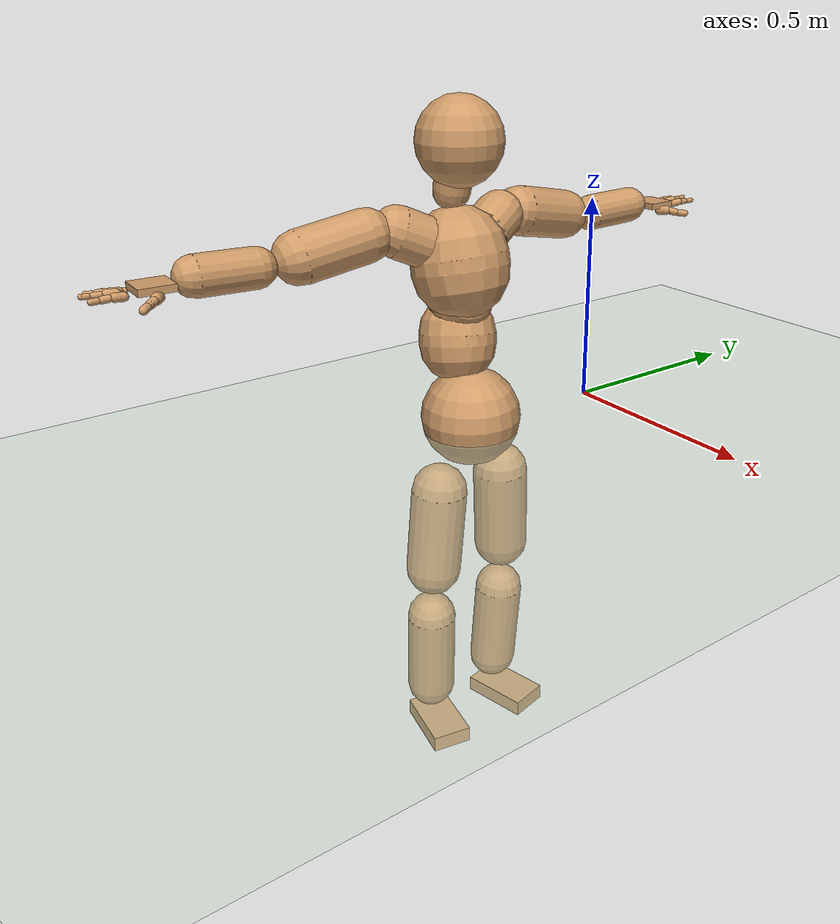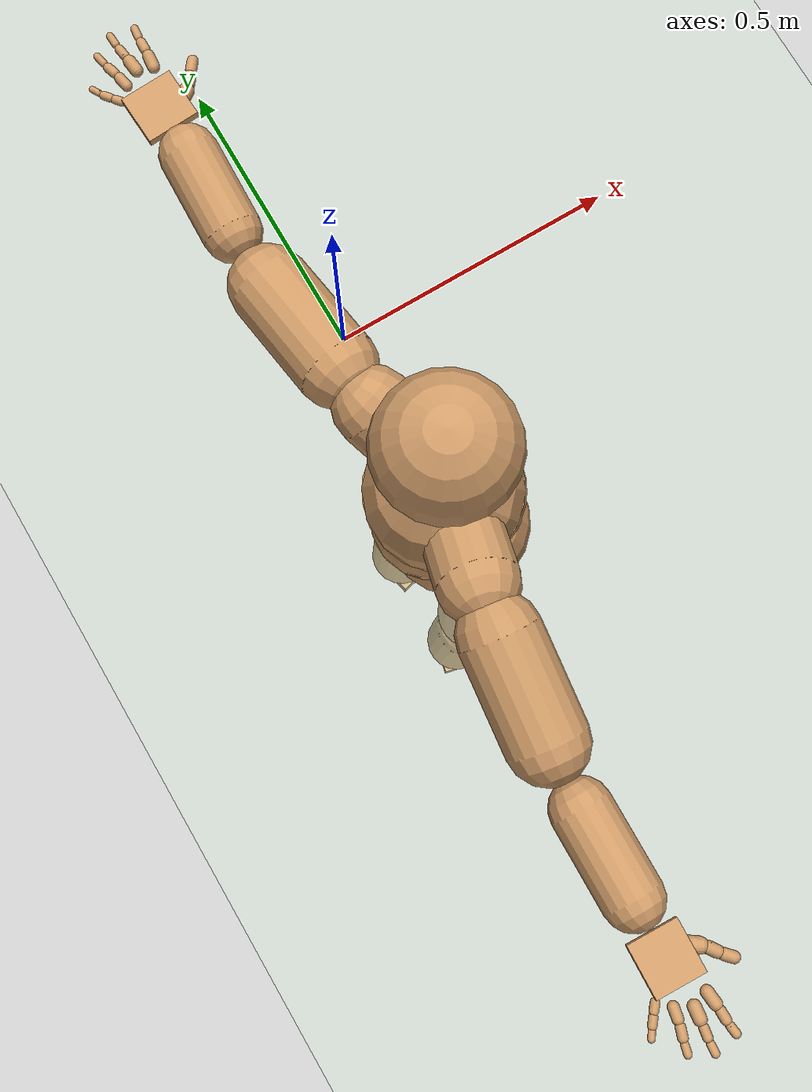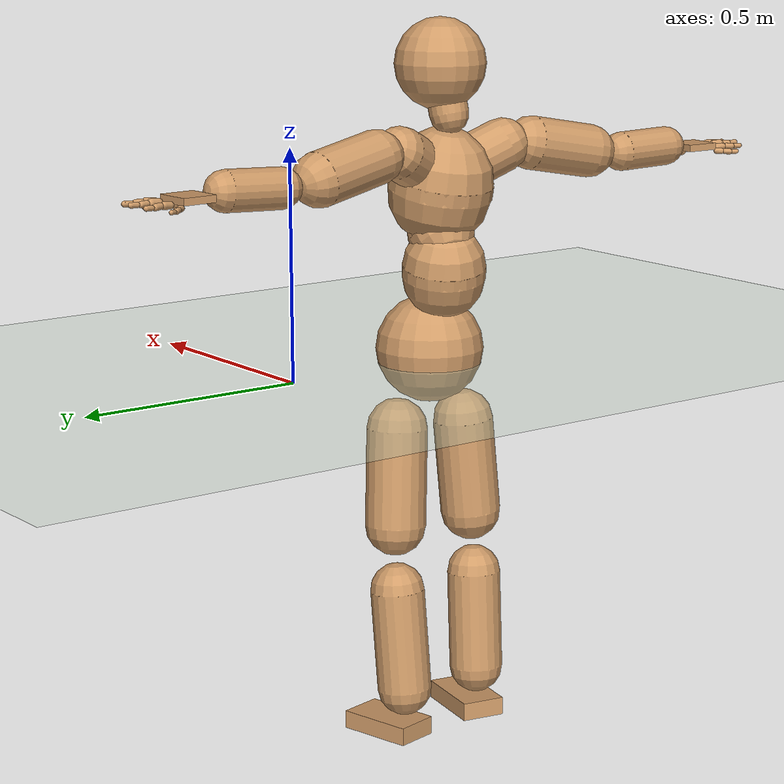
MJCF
<mujoco model="humanoid">
  <compiler coordinate="local" angle="radian"/>
  <default>
    <joint damping="0.0" armature="0.01" stiffness="0.0" limited="true"/>
    <geom conaffinity="1" condim="3" contype="7" margin="0.001" rgba="0.8 0.6 .4 1"/>
  </default>
  <asset>
    <texture type="skybox" builtin="gradient" rgb1=".4 .5 .6" rgb2="0 0 0" width="100" height="100"/>
    <texture builtin="flat" height="1278" mark="cross" markrgb="1 1 1" name="texgeom" random="0.01" rgb1="0.8 0.6 0.4" rgb2="0.8 0.6 0.4" type="cube" width="127"/>
    <texture builtin="checker" height="100" name="texplane" rgb1="0 0 0" rgb2="0.8 0.8 0.8" type="2d" width="100"/>
    <material name="MatPlane" reflectance="0.5" shininess="1" specular="1" texrepeat="60 60" texture="texplane"/>
    <material name="geom" texture="texgeom" texuniform="true"/>
  </asset>
  <worldbody>
    <light cutoff="100" diffuse="1 1 1" dir="-0 0 -1.3" directional="true" exponent="1" pos="0 0 1.3" specular=".1 .1 .1"/>
    <geom conaffinity="1" condim="3" name="floor" pos="0 0 0" rgba="0.8 0.9 0.8 1" size="100 100 .2" type="plane" material="MatPlane"/>
    <body name="Pelvis" pos="0.0007 -0.3651 0.0299">
      <freejoint name="Pelvis"/>
      <geom type="sphere" contype="1" conaffinity="1" density="500" size="0.1195" pos="0.0000 0.0000 0.0000" name="Pelvis"/>
      <body name="L_Hip" pos="0.0005 0.088 -0.098">
        <joint name="L_Hip_x" type="hinge" pos="0 0 0" axis="1 0 0" stiffness="800" damping="80" armature="0.02" range="-180.0000 180.0000"/>
        <joint name="L_Hip_y" type="hinge" pos="0 0 0" axis="0 1 0" stiffness="800" damping="80" armature="0.02" range="-180.0000 180.0000"/>
        <joint name="L_Hip_z" type="hinge" pos="0 0 0" axis="0 0 1" stiffness="800" damping="80" armature="0.02" range="-180.0000 180.0000"/>
        <geom type="capsule" contype="1" conaffinity="1" density="500" fromto="-0.0040 0.0046 -0.0721 -0.0159 0.0183 -0.2882" size="0.0678" name="L_Hip"/>
        <body name="L_Knee" pos="-0.0199 0.0229 -0.3603">
          <joint name="L_Knee_x" type="hinge" pos="0 0 0" axis="1 0 0" stiffness="800" damping="80" armature="0.02" range="-180.0000 180.0000"/>
          <joint name="L_Knee_y" type="hinge" pos="0 0 0" axis="0 1 0" stiffness="800" damping="80" armature="0.02" range="-180.0000 180.0000"/>
          <joint name="L_Knee_z" type="hinge" pos="0 0 0" axis="0 0 1" stiffness="800" damping="80" armature="0.02" range="-180.0000 180.0000"/>
          <geom type="capsule" contype="1" conaffinity="1" density="500" fromto="-0.0056 -0.0023 -0.0758 -0.0224 -0.0092 -0.3030" size="0.0608" name="L_Knee"/>
          <body name="L_Ankle" pos="-0.028 -0.0116 -0.3788">
            <joint name="L_Ankle_x" type="hinge" pos="0 0 0" axis="1 0 0" stiffness="800" damping="80" armature="0.02" range="-180.0000 180.0000"/>
            <joint name="L_Ankle_y" type="hinge" pos="0 0 0" axis="0 1 0" stiffness="800" damping="80" armature="0.02" range="-180.0000 180.0000"/>
            <joint name="L_Ankle_z" type="hinge" pos="0 0 0" axis="0 0 1" stiffness="800" damping="80" armature="0.02" range="-180.0000 180.0000"/>
            <geom type="box" contype="1" conaffinity="1" density="500" pos="0.0539 0.0119 -0.0202" size="0.0858 0.0496 0.0202" quat="0.9941 0.0000 0.0000 0.1088" name="L_Ankle"/>
            <body name="L_Toe" pos="0.1077 0.0239 -0.0404">
              <joint name="L_Toe_x" type="hinge" pos="0 0 0" axis="1 0 0" stiffness="500" damping="50" armature="0.02" range="-180.0000 180.0000"/>
              <joint name="L_Toe_y" type="hinge" pos="0 0 0" axis="0 1 0" stiffness="500" damping="50" armature="0.02" range="-180.0000 180.0000"/>
              <joint name="L_Toe_z" type="hinge" pos="0 0 0" axis="0 0 1" stiffness="500" damping="50" armature="0.02" range="-180.0000 180.0000"/>
              <geom type="box" contype="1" conaffinity="1" density="500" pos="0.0000 0.0000 0.0211" size="0.0009 0.0024 0.0011" quat="0.9933 0.0000 0.0000 0.1155" name="L_Toe"/>
            </body>
          </body>
        </body>
      </body>
      <body name="R_Hip" pos="-0.0005 -0.0869 -0.1038">
        <joint name="R_Hip_x" type="hinge" pos="0 0 0" axis="1 0 0" stiffness="800" damping="80" armature="0.02" range="-180.0000 180.0000"/>
        <joint name="R_Hip_y" type="hinge" pos="0 0 0" axis="0 1 0" stiffness="800" damping="80" armature="0.02" range="-180.0000 180.0000"/>
        <joint name="R_Hip_z" type="hinge" pos="0 0 0" axis="0 0 1" stiffness="800" damping="80" armature="0.02" range="-180.0000 180.0000"/>
        <geom type="capsule" contype="1" conaffinity="1" density="500" fromto="-0.0026 -0.0055 -0.0714 -0.0104 -0.0222 -0.2855" size="0.0676" name="R_Hip"/>
        <body name="R_Knee" pos="-0.013 -0.0277 -0.3569">
          <joint name="R_Knee_x" type="hinge" pos="0 0 0" axis="1 0 0" stiffness="800" damping="80" armature="0.02" range="-180.0000 180.0000"/>
          <joint name="R_Knee_y" type="hinge" pos="0 0 0" axis="0 1 0" stiffness="800" damping="80" armature="0.02" range="-180.0000 180.0000"/>
          <joint name="R_Knee_z" type="hinge" pos="0 0 0" axis="0 0 1" stiffness="800" damping="80" armature="0.02" range="-180.0000 180.0000"/>
          <geom type="capsule" contype="1" conaffinity="1" density="500" fromto="-0.0051 0.0013 -0.0740 -0.0202 0.0052 -0.2958" size="0.0607" name="R_Knee"/>
          <body name="R_Ankle" pos="-0.0253 0.0065 -0.3698">
            <joint name="R_Ankle_x" type="hinge" pos="0 0 0" axis="1 0 0" stiffness="800" damping="80" armature="0.02" range="-180.0000 180.0000"/>
            <joint name="R_Ankle_y" type="hinge" pos="0 0 0" axis="0 1 0" stiffness="800" damping="80" armature="0.02" range="-180.0000 180.0000"/>
            <joint name="R_Ankle_z" type="hinge" pos="0 0 0" axis="0 0 1" stiffness="800" damping="80" armature="0.02" range="-180.0000 180.0000"/>
            <geom type="box" contype="1" conaffinity="1" density="500" pos="0.0509 -0.0098 -0.0218" size="0.0858 0.0495 0.0203" quat="0.9955 0.0000 0.0000 -0.0951" name="R_Ankle"/>
            <body name="R_Toe" pos="0.1018 -0.0196 -0.0437">
              <joint name="R_Toe_x" type="hinge" pos="0 0 0" axis="1 0 0" stiffness="500" damping="50" armature="0.02" range="-180.0000 180.0000"/>
              <joint name="R_Toe_y" type="hinge" pos="0 0 0" axis="0 1 0" stiffness="500" damping="50" armature="0.02" range="-180.0000 180.0000"/>
              <joint name="R_Toe_z" type="hinge" pos="0 0 0" axis="0 0 1" stiffness="500" damping="50" armature="0.02" range="-180.0000 180.0000"/>
              <geom type="box" contype="1" conaffinity="1" density="500" pos="0.0000 0.0000 0.0227" size="0.0009 0.0024 0.0011" quat="0.9965 0.0000 0.0000 -0.0840" name="R_Toe"/>
            </body>
          </body>
        </body>
      </body>
      <body name="Torso" pos="-0.0389 -0.0068 0.1168">
        <joint name="Torso_x" type="hinge" pos="0 0 0" axis="1 0 0" stiffness="1000" damping="100" armature="0.02" range="-180.0000 180.0000"/>
        <joint name="Torso_y" type="hinge" pos="0 0 0" axis="0 1 0" stiffness="1000" damping="100" armature="0.02" range="-180.0000 180.0000"/>
        <joint name="Torso_z" type="hinge" pos="0 0 0" axis="0 0 1" stiffness="1000" damping="100" armature="0.02" range="-180.0000 180.0000"/>
        <geom type="capsule" contype="1" conaffinity="1" density="500" fromto="-0.0149 0.0083 0.0752 -0.0100 0.0055 0.0502" size="0.0916" name="Torso"/>
        <body name="Spine" pos="-0.0249 0.0138 0.1254">
          <joint name="Spine_x" type="hinge" pos="0 0 0" axis="1 0 0" stiffness="1000" damping="100" armature="0.02" range="-180.0000 180.0000"/>
          <joint name="Spine_y" type="hinge" pos="0 0 0" axis="0 1 0" stiffness="1000" damping="100" armature="0.02" range="-180.0000 180.0000"/>
          <joint name="Spine_z" type="hinge" pos="0 0 0" axis="0 0 1" stiffness="1000" damping="100" armature="0.02" range="-180.0000 180.0000"/>
          <geom type="capsule" contype="1" conaffinity="1" density="500" fromto="0.0255 -0.0044 0.0287 0.0170 -0.0030 0.0192" size="0.0728" name="Spine"/>
          <body name="Chest" pos="0.0426 -0.0074 0.0479">
            <joint name="Chest_x" type="hinge" pos="0 0 0" axis="1 0 0" stiffness="1000" damping="100" armature="0.02" range="-180.0000 180.0000"/>
            <joint name="Chest_y" type="hinge" pos="0 0 0" axis="0 1 0" stiffness="1000" damping="100" armature="0.02" range="-180.0000 180.0000"/>
            <joint name="Chest_z" type="hinge" pos="0 0 0" axis="0 0 1" stiffness="1000" damping="100" armature="0.02" range="-180.0000 180.0000"/>
            <geom type="capsule" contype="1" conaffinity="1" density="500" fromto="-0.0186 -0.0021 0.0885 -0.0124 -0.0014 0.0590" size="0.1144" name="Chest"/>
            <body name="Neck" pos="-0.0453 -0.0069 0.2034">
              <joint name="Neck_x" type="hinge" pos="0 0 0" axis="1 0 0" stiffness="500" damping="50" armature="0.02" range="-180.0000 180.0000"/>
              <joint name="Neck_y" type="hinge" pos="0 0 0" axis="0 1 0" stiffness="500" damping="50" armature="0.02" range="-180.0000 180.0000"/>
              <joint name="Neck_z" type="hinge" pos="0 0 0" axis="0 0 1" stiffness="500" damping="50" armature="0.02" range="-180.0000 180.0000"/>
              <geom type="capsule" contype="1" conaffinity="1" density="500" fromto="0.0054 0.0019 0.0268 0.0215 0.0076 0.1073" size="0.0429" name="Neck"/>
              <body name="Head" pos="0.0269 0.0094 0.1341">
                <joint name="Head_x" type="hinge" pos="0 0 0" axis="1 0 0" stiffness="500" damping="50" armature="0.02" range="-180.0000 180.0000"/>
                <joint name="Head_y" type="hinge" pos="0 0 0" axis="0 1 0" stiffness="500" damping="50" armature="0.02" range="-180.0000 180.0000"/>
                <joint name="Head_z" type="hinge" pos="0 0 0" axis="0 0 1" stiffness="500" damping="50" armature="0.02" range="-180.0000 180.0000"/>
                <geom type="sphere" contype="1" conaffinity="1" density="500" size="0.0995" pos="0.0000 0.0000 0.0000" name="Head"/>
              </body>
            </body>
            <body name="L_Thorax" pos="-0.0196 0.0579 0.1215">
              <joint name="L_Thorax_x" type="hinge" pos="0 0 0" axis="1 0 0" stiffness="500" damping="50" armature="0.02" range="-180.0000 180.0000"/>
              <joint name="L_Thorax_y" type="hinge" pos="0 0 0" axis="0 1 0" stiffness="500" damping="50" armature="0.02" range="-180.0000 180.0000"/>
              <joint name="L_Thorax_z" type="hinge" pos="0 0 0" axis="0 0 1" stiffness="500" damping="50" armature="0.02" range="-180.0000 180.0000"/>
              <geom type="capsule" contype="1" conaffinity="1" density="500" fromto="-0.0074 0.0190 0.0091 -0.0298 0.0762 0.0363" size="0.0579" name="L_Thorax"/>
              <body name="L_Shoulder" pos="-0.0372 0.0952 0.0453">
                <joint name="L_Shoulder_x" type="hinge" pos="0 0 0" axis="1 0 0" stiffness="500" damping="50" armature="0.02" range="-180.0000 180.0000"/>
                <joint name="L_Shoulder_y" type="hinge" pos="0 0 0" axis="0 1 0" stiffness="500" damping="50" armature="0.02" range="-180.0000 180.0000"/>
                <joint name="L_Shoulder_z" type="hinge" pos="0 0 0" axis="0 0 1" stiffness="500" damping="50" armature="0.02" range="-180.0000 180.0000"/>
                <geom type="capsule" contype="1" conaffinity="1" density="500" fromto="-0.0067 0.0529 -0.0103 -0.0267 0.2115 -0.0412" size="0.059" name="L_Shoulder"/>
                <body name="L_Elbow" pos="-0.0334 0.2644 -0.0515">
                  <joint name="L_Elbow_x" type="hinge" pos="0 0 0" axis="1 0 0" stiffness="500" damping="50" armature="0.02" range="-720.0000 720.0000"/>
                  <joint name="L_Elbow_y" type="hinge" pos="0 0 0" axis="0 1 0" stiffness="500" damping="50" armature="0.02" range="-720.0000 720.0000"/>
                  <joint name="L_Elbow_z" type="hinge" pos="0 0 0" axis="0 0 1" stiffness="500" damping="50" armature="0.02" range="-720.0000 720.0000"/>
                  <geom type="capsule" contype="1" conaffinity="1" density="500" fromto="0.0012 0.0438 0.0018 0.0049 0.1753 0.0071" size="0.0438" name="L_Elbow"/>
                  <body name="L_Wrist" pos="0.0061 0.2191 0.0089">
                    <joint name="L_Wrist_x" type="hinge" pos="0 0 0" axis="1 0 0" stiffness="300" damping="30" armature="0.02" range="-180.0000 180.0000"/>
                    <joint name="L_Wrist_y" type="hinge" pos="0 0 0" axis="0 1 0" stiffness="300" damping="30" armature="0.02" range="-180.0000 180.0000"/>
                    <joint name="L_Wrist_z" type="hinge" pos="0 0 0" axis="0 0 1" stiffness="300" damping="30" armature="0.02" range="-180.0000 180.0000"/>
                    <geom type="box" contype="1" conaffinity="1" density="500" pos="-0.0024 0.0414 -0.0080" size="0.0386 0.0402 0.0076" quat="0.7274 0.0000 0.0000 -0.6862" name="L_Wrist"/>
                    <body name="L_Index1" pos="0.0198 0.0977 -0.0134">
                      <joint name="L_Index1_x" type="hinge" pos="0 0 0" axis="1 0 0" stiffness="100" damping="10" armature="0.02" range="-180.0000 180.0000"/>
                      <joint name="L_Index1_y" type="hinge" pos="0 0 0" axis="0 1 0" stiffness="100" damping="10" armature="0.02" range="-180.0000 180.0000"/>
                      <joint name="L_Index1_z" type="hinge" pos="0 0 0" axis="0 0 1" stiffness="100" damping="10" armature="0.02" range="-180.0000 180.0000"/>
                      <geom type="capsule" contype="1" conaffinity="1" density="500" fromto="0.0006 0.0062 0.0006 0.0022 0.0247 0.0024" size="0.0091" name="L_Index1"/>
                      <body name="L_Index2" pos="0.0028 0.0309 0.003">
                        <joint name="L_Index2_x" type="hinge" pos="0 0 0" axis="1 0 0" stiffness="100" damping="10" armature="0.02" range="-180.0000 180.0000"/>
                        <joint name="L_Index2_y" type="hinge" pos="0 0 0" axis="0 1 0" stiffness="100" damping="10" armature="0.02" range="-180.0000 180.0000"/>
                        <joint name="L_Index2_z" type="hinge" pos="0 0 0" axis="0 0 1" stiffness="100" damping="10" armature="0.02" range="-180.0000 180.0000"/>
                        <geom type="capsule" contype="1" conaffinity="1" density="500" fromto="0.0001 0.0044 -0.0003 0.0003 0.0174 -0.0011" size="0.0074" name="L_Index2"/>
                        <body name="L_Index3" pos="0.0004 0.0218 -0.0014">
                          <joint name="L_Index3_x" type="hinge" pos="0 0 0" axis="1 0 0" stiffness="100" damping="10" armature="0.02" range="-180.0000 180.0000"/>
                          <joint name="L_Index3_y" type="hinge" pos="0 0 0" axis="0 1 0" stiffness="100" damping="10" armature="0.02" range="-180.0000 180.0000"/>
                          <joint name="L_Index3_z" type="hinge" pos="0 0 0" axis="0 0 1" stiffness="100" damping="10" armature="0.02" range="-180.0000 180.0000"/>
                          <geom type="capsule" contype="1" conaffinity="1" density="500" fromto="0.0005 0.0048 0.0001 0.0019 0.0190 0.0005" size="0.0061" name="L_Index3"/>
                        </body>
                      </body>
                    </body>
                    <body name="L_Middle1" pos="-0.0029 0.1045 -0.011">
                      <joint name="L_Middle1_x" type="hinge" pos="0 0 0" axis="1 0 0" stiffness="100" damping="10" armature="0.02" range="-180.0000 180.0000"/>
                      <joint name="L_Middle1_y" type="hinge" pos="0 0 0" axis="0 1 0" stiffness="100" damping="10" armature="0.02" range="-180.0000 180.0000"/>
                      <joint name="L_Middle1_z" type="hinge" pos="0 0 0" axis="0 0 1" stiffness="100" damping="10" armature="0.02" range="-180.0000 180.0000"/>
                      <geom type="capsule" contype="1" conaffinity="1" density="500" fromto="-0.0007 0.0059 0.0003 -0.0029 0.0234 0.0013" size="0.0094" name="L_Middle1"/>
                      <body name="L_Middle2" pos="-0.0036 0.0293 0.0016">
                        <joint name="L_Middle2_x" type="hinge" pos="0 0 0" axis="1 0 0" stiffness="100" damping="10" armature="0.02" range="-180.0000 180.0000"/>
                        <joint name="L_Middle2_y" type="hinge" pos="0 0 0" axis="0 1 0" stiffness="100" damping="10" armature="0.02" range="-180.0000 180.0000"/>
                        <joint name="L_Middle2_z" type="hinge" pos="0 0 0" axis="0 0 1" stiffness="100" damping="10" armature="0.02" range="-180.0000 180.0000"/>
                        <geom type="capsule" contype="1" conaffinity="1" density="500" fromto="-0.0007 0.0045 -0.0001 -0.0029 0.0180 -0.0005" size="0.0068" name="L_Middle2"/>
                        <body name="L_Middle3" pos="-0.0036 0.0225 -0.0006">
                          <joint name="L_Middle3_x" type="hinge" pos="0 0 0" axis="1 0 0" stiffness="100" damping="10" armature="0.02" range="-180.0000 180.0000"/>
                          <joint name="L_Middle3_y" type="hinge" pos="0 0 0" axis="0 1 0" stiffness="100" damping="10" armature="0.02" range="-180.0000 180.0000"/>
                          <joint name="L_Middle3_z" type="hinge" pos="0 0 0" axis="0 0 1" stiffness="100" damping="10" armature="0.02" range="-180.0000 180.0000"/>
                          <geom type="capsule" contype="1" conaffinity="1" density="500" fromto="-0.0003 0.0049 0.0003 -0.0013 0.0196 0.0011" size="0.0057" name="L_Middle3"/>
                        </body>
                      </body>
                    </body>
                    <body name="L_Pinky1" pos="-0.0414 0.0798 -0.0194">
                      <joint name="L_Pinky1_x" type="hinge" pos="0 0 0" axis="1 0 0" stiffness="100" damping="10" armature="0.02" range="-180.0000 180.0000"/>
                      <joint name="L_Pinky1_y" type="hinge" pos="0 0 0" axis="0 1 0" stiffness="100" damping="10" armature="0.02" range="-180.0000 180.0000"/>
                      <joint name="L_Pinky1_z" type="hinge" pos="0 0 0" axis="0 0 1" stiffness="100" damping="10" armature="0.02" range="-180.0000 180.0000"/>
                      <geom type="capsule" contype="1" conaffinity="1" density="500" fromto="-0.0023 0.0029 -0.0001 -0.0094 0.0115 -0.0005" size="0.0066" name="L_Pinky1"/>
                      <body name="L_Pinky2" pos="-0.0117 0.0143 -0.0006">
                        <joint name="L_Pinky2_x" type="hinge" pos="0 0 0" axis="1 0 0" stiffness="100" damping="10" armature="0.02" range="-180.0000 180.0000"/>
                        <joint name="L_Pinky2_y" type="hinge" pos="0 0 0" axis="0 1 0" stiffness="100" damping="10" armature="0.02" range="-180.0000 180.0000"/>
                        <joint name="L_Pinky2_z" type="hinge" pos="0 0 0" axis="0 0 1" stiffness="100" damping="10" armature="0.02" range="-180.0000 180.0000"/>
                        <geom type="capsule" contype="1" conaffinity="1" density="500" fromto="-0.0022 0.0029 -0.0002 -0.0090 0.0117 -0.0009" size="0.0064" name="L_Pinky2"/>
                        <body name="L_Pinky3" pos="-0.0112 0.0146 -0.0011">
                          <joint name="L_Pinky3_x" type="hinge" pos="0 0 0" axis="1 0 0" stiffness="100" damping="10" armature="0.02" range="-180.0000 180.0000"/>
                          <joint name="L_Pinky3_y" type="hinge" pos="0 0 0" axis="0 1 0" stiffness="100" damping="10" armature="0.02" range="-180.0000 180.0000"/>
                          <joint name="L_Pinky3_z" type="hinge" pos="0 0 0" axis="0 0 1" stiffness="100" damping="10" armature="0.02" range="-180.0000 180.0000"/>
                          <geom type="capsule" contype="1" conaffinity="1" density="500" fromto="-0.0018 0.0033 0.0002 -0.0074 0.0133 0.0007" size="0.0048" name="L_Pinky3"/>
                        </body>
                      </body>
                    </body>
                    <body name="L_Ring1" pos="-0.0258 0.0927 -0.0141">
                      <joint name="L_Ring1_x" type="hinge" pos="0 0 0" axis="1 0 0" stiffness="100" damping="10" armature="0.02" range="-180.0000 180.0000"/>
                      <joint name="L_Ring1_y" type="hinge" pos="0 0 0" axis="0 1 0" stiffness="100" damping="10" armature="0.02" range="-180.0000 180.0000"/>
                      <joint name="L_Ring1_z" type="hinge" pos="0 0 0" axis="0 0 1" stiffness="100" damping="10" armature="0.02" range="-180.0000 180.0000"/>
                      <geom type="capsule" contype="1" conaffinity="1" density="500" fromto="-0.0010 0.0053 0.0003 -0.0042 0.0213 0.0012" size="0.008" name="L_Ring1"/>
                      <body name="L_Ring2" pos="-0.0052 0.0266 0.0016">
                        <joint name="L_Ring2_x" type="hinge" pos="0 0 0" axis="1 0 0" stiffness="100" damping="10" armature="0.02" range="-180.0000 180.0000"/>
                        <joint name="L_Ring2_y" type="hinge" pos="0 0 0" axis="0 1 0" stiffness="100" damping="10" armature="0.02" range="-180.0000 180.0000"/>
                        <joint name="L_Ring2_z" type="hinge" pos="0 0 0" axis="0 0 1" stiffness="100" damping="10" armature="0.02" range="-180.0000 180.0000"/>
                        <geom type="capsule" contype="1" conaffinity="1" density="500" fromto="-0.0014 0.0043 -0.0002 -0.0056 0.0173 -0.0009" size="0.0072" name="L_Ring2"/>
                        <body name="L_Ring3" pos="-0.007 0.0217 -0.0012">
                          <joint name="L_Ring3_x" type="hinge" pos="0 0 0" axis="1 0 0" stiffness="100" damping="10" armature="0.02" range="-180.0000 180.0000"/>
                          <joint name="L_Ring3_y" type="hinge" pos="0 0 0" axis="0 1 0" stiffness="100" damping="10" armature="0.02" range="-180.0000 180.0000"/>
                          <joint name="L_Ring3_z" type="hinge" pos="0 0 0" axis="0 0 1" stiffness="100" damping="10" armature="0.02" range="-180.0000 180.0000"/>
                          <geom type="capsule" contype="1" conaffinity="1" density="500" fromto="-0.0010 0.0047 0.0002 -0.0040 0.0189 0.0007" size="0.0055" name="L_Ring3"/>
                        </body>
                      </body>
                    </body>
                    <body name="L_Thumb1" pos="0.026 0.0394 -0.0223">
                      <joint name="L_Thumb1_x" type="hinge" pos="0 0 0" axis="1 0 0" stiffness="100" damping="10" armature="0.02" range="-180.0000 180.0000"/>
                      <joint name="L_Thumb1_y" type="hinge" pos="0 0 0" axis="0 1 0" stiffness="100" damping="10" armature="0.02" range="-180.0000 180.0000"/>
                      <joint name="L_Thumb1_z" type="hinge" pos="0 0 0" axis="0 0 1" stiffness="100" damping="10" armature="0.02" range="-180.0000 180.0000"/>
                      <geom type="capsule" contype="1" conaffinity="1" density="500" fromto="0.0046 0.0032 0.0003 0.0185 0.0129 0.0012" size="0.0118" name="L_Thumb1"/>
                      <body name="L_Thumb2" pos="0.0231 0.0161 0.0015">
                        <joint name="L_Thumb2_x" type="hinge" pos="0 0 0" axis="1 0 0" stiffness="100" damping="10" armature="0.02" range="-180.0000 180.0000"/>
                        <joint name="L_Thumb2_y" type="hinge" pos="0 0 0" axis="0 1 0" stiffness="100" damping="10" armature="0.02" range="-180.0000 180.0000"/>
                        <joint name="L_Thumb2_z" type="hinge" pos="0 0 0" axis="0 0 1" stiffness="100" damping="10" armature="0.02" range="-180.0000 180.0000"/>
                        <geom type="capsule" contype="1" conaffinity="1" density="500" fromto="0.0028 0.0039 -0.0011 0.0111 0.0155 -0.0044" size="0.0092" name="L_Thumb2"/>
                        <body name="L_Thumb3" pos="0.0138 0.0194 -0.0055">
                          <joint name="L_Thumb3_x" type="hinge" pos="0 0 0" axis="1 0 0" stiffness="100" damping="10" armature="0.02" range="-180.0000 180.0000"/>
                          <joint name="L_Thumb3_y" type="hinge" pos="0 0 0" axis="0 1 0" stiffness="100" damping="10" armature="0.02" range="-180.0000 180.0000"/>
                          <joint name="L_Thumb3_z" type="hinge" pos="0 0 0" axis="0 0 1" stiffness="100" damping="10" armature="0.02" range="-180.0000 180.0000"/>
                          <geom type="capsule" contype="1" conaffinity="1" density="500" fromto="0.0032 0.0043 -0.0007 0.0127 0.0171 -0.0028" size="0.0085" name="L_Thumb3"/>
                        </body>
                      </body>
                    </body>
                  </body>
                </body>
              </body>
            </body>
            <body name="R_Thorax" pos="-0.028 -0.0615 0.1176">
              <joint name="R_Thorax_x" type="hinge" pos="0 0 0" axis="1 0 0" stiffness="500" damping="50" armature="0.02" range="-180.0000 180.0000"/>
              <joint name="R_Thorax_y" type="hinge" pos="0 0 0" axis="0 1 0" stiffness="500" damping="50" armature="0.02" range="-180.0000 180.0000"/>
              <joint name="R_Thorax_z" type="hinge" pos="0 0 0" axis="0 0 1" stiffness="500" damping="50" armature="0.02" range="-180.0000 180.0000"/>
              <geom type="capsule" contype="1" conaffinity="1" density="500" fromto="-0.0057 -0.0207 0.0094 -0.0226 -0.0826 0.0375" size="0.0592" name="R_Thorax"/>
              <body name="R_Shoulder" pos="-0.0283 -0.1033 0.0468">
                <joint name="R_Shoulder_x" type="hinge" pos="0 0 0" axis="1 0 0" stiffness="500" damping="50" armature="0.02" range="-180.0000 180.0000"/>
                <joint name="R_Shoulder_y" type="hinge" pos="0 0 0" axis="0 1 0" stiffness="500" damping="50" armature="0.02" range="-180.0000 180.0000"/>
                <joint name="R_Shoulder_z" type="hinge" pos="0 0 0" axis="0 0 1" stiffness="500" damping="50" armature="0.02" range="-180.0000 180.0000"/>
                <geom type="capsule" contype="1" conaffinity="1" density="500" fromto="-0.0053 -0.0509 -0.0092 -0.0210 -0.2038 -0.0370" size="0.0595" name="R_Shoulder"/>
                <body name="R_Elbow" pos="-0.0263 -0.2547 -0.0462">
                  <joint name="R_Elbow_x" type="hinge" pos="0 0 0" axis="1 0 0" stiffness="500" damping="50" armature="0.02" range="-720.0000 720.0000"/>
                  <joint name="R_Elbow_y" type="hinge" pos="0 0 0" axis="0 1 0" stiffness="500" damping="50" armature="0.02" range="-720.0000 720.0000"/>
                  <joint name="R_Elbow_z" type="hinge" pos="0 0 0" axis="0 0 1" stiffness="500" damping="50" armature="0.02" range="-720.0000 720.0000"/>
                  <geom type="capsule" contype="1" conaffinity="1" density="500" fromto="-0.0007 -0.0438 0.0010 -0.0028 -0.1753 0.0040" size="0.0439" name="R_Elbow"/>
                  <body name="R_Wrist" pos="-0.0034 -0.2191 0.005">
                    <joint name="R_Wrist_x" type="hinge" pos="0 0 0" axis="1 0 0" stiffness="300" damping="30" armature="0.02" range="-180.0000 180.0000"/>
                    <joint name="R_Wrist_y" type="hinge" pos="0 0 0" axis="0 1 0" stiffness="300" damping="30" armature="0.02" range="-180.0000 180.0000"/>
                    <joint name="R_Wrist_z" type="hinge" pos="0 0 0" axis="0 0 1" stiffness="300" damping="30" armature="0.02" range="-180.0000 180.0000"/>
                    <geom type="box" contype="1" conaffinity="1" density="500" pos="-0.0015 -0.0409 -0.0075" size="0.0386 0.0376 0.0078" quat="0.7199 0.0000 0.0000 0.6940" name="R_Wrist"/>
                    <body name="R_Index1" pos="0.0216 -0.0966 -0.0124">
                      <joint name="R_Index1_x" type="hinge" pos="0 0 0" axis="1 0 0" stiffness="100" damping="10" armature="0.02" range="-180.0000 180.0000"/>
                      <joint name="R_Index1_y" type="hinge" pos="0 0 0" axis="0 1 0" stiffness="100" damping="10" armature="0.02" range="-180.0000 180.0000"/>
                      <joint name="R_Index1_z" type="hinge" pos="0 0 0" axis="0 0 1" stiffness="100" damping="10" armature="0.02" range="-180.0000 180.0000"/>
                      <geom type="capsule" contype="1" conaffinity="1" density="500" fromto="0.0006 -0.0062 0.0006 0.0022 -0.0247 0.0024" size="0.0091" name="R_Index1"/>
                      <body name="R_Index2" pos="0.0028 -0.0309 0.003">
                        <joint name="R_Index2_x" type="hinge" pos="0 0 0" axis="1 0 0" stiffness="100" damping="10" armature="0.02" range="-180.0000 180.0000"/>
                        <joint name="R_Index2_y" type="hinge" pos="0 0 0" axis="0 1 0" stiffness="100" damping="10" armature="0.02" range="-180.0000 180.0000"/>
                        <joint name="R_Index2_z" type="hinge" pos="0 0 0" axis="0 0 1" stiffness="100" damping="10" armature="0.02" range="-180.0000 180.0000"/>
                        <geom type="capsule" contype="1" conaffinity="1" density="500" fromto="0.0001 -0.0044 -0.0003 0.0003 -0.0174 -0.0011" size="0.0074" name="R_Index2"/>
                        <body name="R_Index3" pos="0.0004 -0.0218 -0.0014">
                          <joint name="R_Index3_x" type="hinge" pos="0 0 0" axis="1 0 0" stiffness="100" damping="10" armature="0.02" range="-180.0000 180.0000"/>
                          <joint name="R_Index3_y" type="hinge" pos="0 0 0" axis="0 1 0" stiffness="100" damping="10" armature="0.02" range="-180.0000 180.0000"/>
                          <joint name="R_Index3_z" type="hinge" pos="0 0 0" axis="0 0 1" stiffness="100" damping="10" armature="0.02" range="-180.0000 180.0000"/>
                          <geom type="capsule" contype="1" conaffinity="1" density="500" fromto="0.0005 -0.0040 0.0001 0.0019 -0.0158 0.0005" size="0.0064" name="R_Index3"/>
                        </body>
                      </body>
                    </body>
                    <body name="R_Middle1" pos="-0.001 -0.1034 -0.0099">
                      <joint name="R_Middle1_x" type="hinge" pos="0 0 0" axis="1 0 0" stiffness="100" damping="10" armature="0.02" range="-180.0000 180.0000"/>
                      <joint name="R_Middle1_y" type="hinge" pos="0 0 0" axis="0 1 0" stiffness="100" damping="10" armature="0.02" range="-180.0000 180.0000"/>
                      <joint name="R_Middle1_z" type="hinge" pos="0 0 0" axis="0 0 1" stiffness="100" damping="10" armature="0.02" range="-180.0000 180.0000"/>
                      <geom type="capsule" contype="1" conaffinity="1" density="500" fromto="-0.0007 -0.0059 0.0003 -0.0029 -0.0234 0.0013" size="0.0094" name="R_Middle1"/>
                      <body name="R_Middle2" pos="-0.0036 -0.0293 0.0016">
                        <joint name="R_Middle2_x" type="hinge" pos="0 0 0" axis="1 0 0" stiffness="100" damping="10" armature="0.02" range="-180.0000 180.0000"/>
                        <joint name="R_Middle2_y" type="hinge" pos="0 0 0" axis="0 1 0" stiffness="100" damping="10" armature="0.02" range="-180.0000 180.0000"/>
                        <joint name="R_Middle2_z" type="hinge" pos="0 0 0" axis="0 0 1" stiffness="100" damping="10" armature="0.02" range="-180.0000 180.0000"/>
                        <geom type="capsule" contype="1" conaffinity="1" density="500" fromto="-0.0007 -0.0045 -0.0001 -0.0029 -0.0180 -0.0005" size="0.0068" name="R_Middle2"/>
                        <body name="R_Middle3" pos="-0.0036 -0.0225 -0.0006">
                          <joint name="R_Middle3_x" type="hinge" pos="0 0 0" axis="1 0 0" stiffness="100" damping="10" armature="0.02" range="-180.0000 180.0000"/>
                          <joint name="R_Middle3_y" type="hinge" pos="0 0 0" axis="0 1 0" stiffness="100" damping="10" armature="0.02" range="-180.0000 180.0000"/>
                          <joint name="R_Middle3_z" type="hinge" pos="0 0 0" axis="0 0 1" stiffness="100" damping="10" armature="0.02" range="-180.0000 180.0000"/>
                          <geom type="capsule" contype="1" conaffinity="1" density="500" fromto="-0.0003 -0.0041 0.0003 -0.0013 -0.0164 0.0011" size="0.0059" name="R_Middle3"/>
                        </body>
                      </body>
                    </body>
                    <body name="R_Pinky1" pos="-0.0395 -0.0787 -0.0184">
                      <joint name="R_Pinky1_x" type="hinge" pos="0 0 0" axis="1 0 0" stiffness="100" damping="10" armature="0.02" range="-180.0000 180.0000"/>
                      <joint name="R_Pinky1_y" type="hinge" pos="0 0 0" axis="0 1 0" stiffness="100" damping="10" armature="0.02" range="-180.0000 180.0000"/>
                      <joint name="R_Pinky1_z" type="hinge" pos="0 0 0" axis="0 0 1" stiffness="100" damping="10" armature="0.02" range="-180.0000 180.0000"/>
                      <geom type="capsule" contype="1" conaffinity="1" density="500" fromto="-0.0023 -0.0029 -0.0001 -0.0094 -0.0115 -0.0005" size="0.0066" name="R_Pinky1"/>
                      <body name="R_Pinky2" pos="-0.0117 -0.0143 -0.0006">
                        <joint name="R_Pinky2_x" type="hinge" pos="0 0 0" axis="1 0 0" stiffness="100" damping="10" armature="0.02" range="-180.0000 180.0000"/>
                        <joint name="R_Pinky2_y" type="hinge" pos="0 0 0" axis="0 1 0" stiffness="100" damping="10" armature="0.02" range="-180.0000 180.0000"/>
                        <joint name="R_Pinky2_z" type="hinge" pos="0 0 0" axis="0 0 1" stiffness="100" damping="10" armature="0.02" range="-180.0000 180.0000"/>
                        <geom type="capsule" contype="1" conaffinity="1" density="500" fromto="-0.0022 -0.0029 -0.0002 -0.0090 -0.0117 -0.0009" size="0.0064" name="R_Pinky2"/>
                        <body name="R_Pinky3" pos="-0.0112 -0.0146 -0.0011">
                          <joint name="R_Pinky3_x" type="hinge" pos="0 0 0" axis="1 0 0" stiffness="100" damping="10" armature="0.02" range="-180.0000 180.0000"/>
                          <joint name="R_Pinky3_y" type="hinge" pos="0 0 0" axis="0 1 0" stiffness="100" damping="10" armature="0.02" range="-180.0000 180.0000"/>
                          <joint name="R_Pinky3_z" type="hinge" pos="0 0 0" axis="0 0 1" stiffness="100" damping="10" armature="0.02" range="-180.0000 180.0000"/>
                          <geom type="capsule" contype="1" conaffinity="1" density="500" fromto="-0.0018 -0.0025 0.0002 -0.0074 -0.0101 0.0007" size="0.0051" name="R_Pinky3"/>
                        </body>
                      </body>
                    </body>
                    <body name="R_Ring1" pos="-0.0239 -0.0916 -0.0131">
                      <joint name="R_Ring1_x" type="hinge" pos="0 0 0" axis="1 0 0" stiffness="100" damping="10" armature="0.02" range="-180.0000 180.0000"/>
                      <joint name="R_Ring1_y" type="hinge" pos="0 0 0" axis="0 1 0" stiffness="100" damping="10" armature="0.02" range="-180.0000 180.0000"/>
                      <joint name="R_Ring1_z" type="hinge" pos="0 0 0" axis="0 0 1" stiffness="100" damping="10" armature="0.02" range="-180.0000 180.0000"/>
                      <geom type="capsule" contype="1" conaffinity="1" density="500" fromto="-0.0010 -0.0053 0.0003 -0.0042 -0.0213 0.0012" size="0.008" name="R_Ring1"/>
                      <body name="R_Ring2" pos="-0.0052 -0.0266 0.0016">
                        <joint name="R_Ring2_x" type="hinge" pos="0 0 0" axis="1 0 0" stiffness="100" damping="10" armature="0.02" range="-180.0000 180.0000"/>
                        <joint name="R_Ring2_y" type="hinge" pos="0 0 0" axis="0 1 0" stiffness="100" damping="10" armature="0.02" range="-180.0000 180.0000"/>
                        <joint name="R_Ring2_z" type="hinge" pos="0 0 0" axis="0 0 1" stiffness="100" damping="10" armature="0.02" range="-180.0000 180.0000"/>
                        <geom type="capsule" contype="1" conaffinity="1" density="500" fromto="-0.0014 -0.0043 -0.0002 -0.0056 -0.0173 -0.0009" size="0.0072" name="R_Ring2"/>
                        <body name="R_Ring3" pos="-0.007 -0.0217 -0.0012">
                          <joint name="R_Ring3_x" type="hinge" pos="0 0 0" axis="1 0 0" stiffness="100" damping="10" armature="0.02" range="-180.0000 180.0000"/>
                          <joint name="R_Ring3_y" type="hinge" pos="0 0 0" axis="0 1 0" stiffness="100" damping="10" armature="0.02" range="-180.0000 180.0000"/>
                          <joint name="R_Ring3_z" type="hinge" pos="0 0 0" axis="0 0 1" stiffness="100" damping="10" armature="0.02" range="-180.0000 180.0000"/>
                          <geom type="capsule" contype="1" conaffinity="1" density="500" fromto="-0.0010 -0.0039 0.0002 -0.0040 -0.0157 0.0007" size="0.0058" name="R_Ring3"/>
                        </body>
                      </body>
                    </body>
                    <body name="R_Thumb1" pos="0.0279 -0.0382 -0.0213">
                      <joint name="R_Thumb1_x" type="hinge" pos="0 0 0" axis="1 0 0" stiffness="100" damping="10" armature="0.02" range="-180.0000 180.0000"/>
                      <joint name="R_Thumb1_y" type="hinge" pos="0 0 0" axis="0 1 0" stiffness="100" damping="10" armature="0.02" range="-180.0000 180.0000"/>
                      <joint name="R_Thumb1_z" type="hinge" pos="0 0 0" axis="0 0 1" stiffness="100" damping="10" armature="0.02" range="-180.0000 180.0000"/>
                      <geom type="capsule" contype="1" conaffinity="1" density="500" fromto="0.0046 -0.0032 0.0003 0.0185 -0.0129 0.0012" size="0.0118" name="R_Thumb1"/>
                      <body name="R_Thumb2" pos="0.0231 -0.0161 0.0015">
                        <joint name="R_Thumb2_x" type="hinge" pos="0 0 0" axis="1 0 0" stiffness="100" damping="10" armature="0.02" range="-180.0000 180.0000"/>
                        <joint name="R_Thumb2_y" type="hinge" pos="0 0 0" axis="0 1 0" stiffness="100" damping="10" armature="0.02" range="-180.0000 180.0000"/>
                        <joint name="R_Thumb2_z" type="hinge" pos="0 0 0" axis="0 0 1" stiffness="100" damping="10" armature="0.02" range="-180.0000 180.0000"/>
                        <geom type="capsule" contype="1" conaffinity="1" density="500" fromto="0.0028 -0.0039 -0.0011 0.0111 -0.0155 -0.0044" size="0.0092" name="R_Thumb2"/>
                        <body name="R_Thumb3" pos="0.0138 -0.0194 -0.0055">
                          <joint name="R_Thumb3_x" type="hinge" pos="0 0 0" axis="1 0 0" stiffness="100" damping="10" armature="0.02" range="-180.0000 180.0000"/>
                          <joint name="R_Thumb3_y" type="hinge" pos="0 0 0" axis="0 1 0" stiffness="100" damping="10" armature="0.02" range="-180.0000 180.0000"/>
                          <joint name="R_Thumb3_z" type="hinge" pos="0 0 0" axis="0 0 1" stiffness="100" damping="10" armature="0.02" range="-180.0000 180.0000"/>
                          <geom type="capsule" contype="1" conaffinity="1" density="500" fromto="0.0032 -0.0035 -0.0007 0.0127 -0.0139 -0.0028" size="0.0087" name="R_Thumb3"/>
                        </body>
                      </body>
                    </body>
                  </body>
                </body>
              </body>
            </body>
          </body>
        </body>
      </body>
    </body>
  </worldbody>
  <actuator>
    <motor name="L_Hip_x" joint="L_Hip_x" gear="500"/>
    <motor name="L_Hip_y" joint="L_Hip_y" gear="500"/>
    <motor name="L_Hip_z" joint="L_Hip_z" gear="500"/>
    <motor name="L_Knee_x" joint="L_Knee_x" gear="500"/>
    <motor name="L_Knee_y" joint="L_Knee_y" gear="500"/>
    <motor name="L_Knee_z" joint="L_Knee_z" gear="500"/>
    <motor name="L_Ankle_x" joint="L_Ankle_x" gear="500"/>
    <motor name="L_Ankle_y" joint="L_Ankle_y" gear="500"/>
    <motor name="L_Ankle_z" joint="L_Ankle_z" gear="500"/>
    <motor name="L_Toe_x" joint="L_Toe_x" gear="500"/>
    <motor name="L_Toe_y" joint="L_Toe_y" gear="500"/>
    <motor name="L_Toe_z" joint="L_Toe_z" gear="500"/>
    <motor name="R_Hip_x" joint="R_Hip_x" gear="500"/>
    <motor name="R_Hip_y" joint="R_Hip_y" gear="500"/>
    <motor name="R_Hip_z" joint="R_Hip_z" gear="500"/>
    <motor name="R_Knee_x" joint="R_Knee_x" gear="500"/>
    <motor name="R_Knee_y" joint="R_Knee_y" gear="500"/>
    <motor name="R_Knee_z" joint="R_Knee_z" gear="500"/>
    <motor name="R_Ankle_x" joint="R_Ankle_x" gear="500"/>
    <motor name="R_Ankle_y" joint="R_Ankle_y" gear="500"/>
    <motor name="R_Ankle_z" joint="R_Ankle_z" gear="500"/>
    <motor name="R_Toe_x" joint="R_Toe_x" gear="500"/>
    <motor name="R_Toe_y" joint="R_Toe_y" gear="500"/>
    <motor name="R_Toe_z" joint="R_Toe_z" gear="500"/>
    <motor name="Torso_x" joint="Torso_x" gear="500"/>
    <motor name="Torso_y" joint="Torso_y" gear="500"/>
    <motor name="Torso_z" joint="Torso_z" gear="500"/>
    <motor name="Spine_x" joint="Spine_x" gear="500"/>
    <motor name="Spine_y" joint="Spine_y" gear="500"/>
    <motor name="Spine_z" joint="Spine_z" gear="500"/>
    <motor name="Chest_x" joint="Chest_x" gear="500"/>
    <motor name="Chest_y" joint="Chest_y" gear="500"/>
    <motor name="Chest_z" joint="Chest_z" gear="500"/>
    <motor name="Neck_x" joint="Neck_x" gear="500"/>
    <motor name="Neck_y" joint="Neck_y" gear="500"/>
    <motor name="Neck_z" joint="Neck_z" gear="500"/>
    <motor name="Head_x" joint="Head_x" gear="500"/>
    <motor name="Head_y" joint="Head_y" gear="500"/>
    <motor name="Head_z" joint="Head_z" gear="500"/>
    <motor name="L_Thorax_x" joint="L_Thorax_x" gear="500"/>
    <motor name="L_Thorax_y" joint="L_Thorax_y" gear="500"/>
    <motor name="L_Thorax_z" joint="L_Thorax_z" gear="500"/>
    <motor name="L_Shoulder_x" joint="L_Shoulder_x" gear="500"/>
    <motor name="L_Shoulder_y" joint="L_Shoulder_y" gear="500"/>
    <motor name="L_Shoulder_z" joint="L_Shoulder_z" gear="500"/>
    <motor name="L_Elbow_x" joint="L_Elbow_x" gear="500"/>
    <motor name="L_Elbow_y" joint="L_Elbow_y" gear="500"/>
    <motor name="L_Elbow_z" joint="L_Elbow_z" gear="500"/>
    <motor name="L_Wrist_x" joint="L_Wrist_x" gear="500"/>
    <motor name="L_Wrist_y" joint="L_Wrist_y" gear="500"/>
    <motor name="L_Wrist_z" joint="L_Wrist_z" gear="500"/>
    <motor name="L_Index1_x" joint="L_Index1_x" gear="500"/>
    <motor name="L_Index1_y" joint="L_Index1_y" gear="500"/>
    <motor name="L_Index1_z" joint="L_Index1_z" gear="500"/>
    <motor name="L_Index2_x" joint="L_Index2_x" gear="500"/>
    <motor name="L_Index2_y" joint="L_Index2_y" gear="500"/>
    <motor name="L_Index2_z" joint="L_Index2_z" gear="500"/>
    <motor name="L_Index3_x" joint="L_Index3_x" gear="500"/>
    <motor name="L_Index3_y" joint="L_Index3_y" gear="500"/>
    <motor name="L_Index3_z" joint="L_Index3_z" gear="500"/>
    <motor name="L_Middle1_x" joint="L_Middle1_x" gear="500"/>
    <motor name="L_Middle1_y" joint="L_Middle1_y" gear="500"/>
    <motor name="L_Middle1_z" joint="L_Middle1_z" gear="500"/>
    <motor name="L_Middle2_x" joint="L_Middle2_x" gear="500"/>
    <motor name="L_Middle2_y" joint="L_Middle2_y" gear="500"/>
    <motor name="L_Middle2_z" joint="L_Middle2_z" gear="500"/>
    <motor name="L_Middle3_x" joint="L_Middle3_x" gear="500"/>
    <motor name="L_Middle3_y" joint="L_Middle3_y" gear="500"/>
    <motor name="L_Middle3_z" joint="L_Middle3_z" gear="500"/>
    <motor name="L_Pinky1_x" joint="L_Pinky1_x" gear="500"/>
    <motor name="L_Pinky1_y" joint="L_Pinky1_y" gear="500"/>
    <motor name="L_Pinky1_z" joint="L_Pinky1_z" gear="500"/>
    <motor name="L_Pinky2_x" joint="L_Pinky2_x" gear="500"/>
    <motor name="L_Pinky2_y" joint="L_Pinky2_y" gear="500"/>
    <motor name="L_Pinky2_z" joint="L_Pinky2_z" gear="500"/>
    <motor name="L_Pinky3_x" joint="L_Pinky3_x" gear="500"/>
    <motor name="L_Pinky3_y" joint="L_Pinky3_y" gear="500"/>
    <motor name="L_Pinky3_z" joint="L_Pinky3_z" gear="500"/>
    <motor name="L_Ring1_x" joint="L_Ring1_x" gear="500"/>
    <motor name="L_Ring1_y" joint="L_Ring1_y" gear="500"/>
    <motor name="L_Ring1_z" joint="L_Ring1_z" gear="500"/>
    <motor name="L_Ring2_x" joint="L_Ring2_x" gear="500"/>
    <motor name="L_Ring2_y" joint="L_Ring2_y" gear="500"/>
    <motor name="L_Ring2_z" joint="L_Ring2_z" gear="500"/>
    <motor name="L_Ring3_x" joint="L_Ring3_x" gear="500"/>
    <motor name="L_Ring3_y" joint="L_Ring3_y" gear="500"/>
    <motor name="L_Ring3_z" joint="L_Ring3_z" gear="500"/>
    <motor name="L_Thumb1_x" joint="L_Thumb1_x" gear="500"/>
    <motor name="L_Thumb1_y" joint="L_Thumb1_y" gear="500"/>
    <motor name="L_Thumb1_z" joint="L_Thumb1_z" gear="500"/>
    <motor name="L_Thumb2_x" joint="L_Thumb2_x" gear="500"/>
    <motor name="L_Thumb2_y" joint="L_Thumb2_y" gear="500"/>
    <motor name="L_Thumb2_z" joint="L_Thumb2_z" gear="500"/>
    <motor name="L_Thumb3_x" joint="L_Thumb3_x" gear="500"/>
    <motor name="L_Thumb3_y" joint="L_Thumb3_y" gear="500"/>
    <motor name="L_Thumb3_z" joint="L_Thumb3_z" gear="500"/>
    <motor name="R_Thorax_x" joint="R_Thorax_x" gear="500"/>
    <motor name="R_Thorax_y" joint="R_Thorax_y" gear="500"/>
    <motor name="R_Thorax_z" joint="R_Thorax_z" gear="500"/>
    <motor name="R_Shoulder_x" joint="R_Shoulder_x" gear="500"/>
    <motor name="R_Shoulder_y" joint="R_Shoulder_y" gear="500"/>
    <motor name="R_Shoulder_z" joint="R_Shoulder_z" gear="500"/>
    <motor name="R_Elbow_x" joint="R_Elbow_x" gear="500"/>
    <motor name="R_Elbow_y" joint="R_Elbow_y" gear="500"/>
    <motor name="R_Elbow_z" joint="R_Elbow_z" gear="500"/>
    <motor name="R_Wrist_x" joint="R_Wrist_x" gear="500"/>
    <motor name="R_Wrist_y" joint="R_Wrist_y" gear="500"/>
    <motor name="R_Wrist_z" joint="R_Wrist_z" gear="500"/>
    <motor name="R_Index1_x" joint="R_Index1_x" gear="500"/>
    <motor name="R_Index1_y" joint="R_Index1_y" gear="500"/>
    <motor name="R_Index1_z" joint="R_Index1_z" gear="500"/>
    <motor name="R_Index2_x" joint="R_Index2_x" gear="500"/>
    <motor name="R_Index2_y" joint="R_Index2_y" gear="500"/>
    <motor name="R_Index2_z" joint="R_Index2_z" gear="500"/>
    <motor name="R_Index3_x" joint="R_Index3_x" gear="500"/>
    <motor name="R_Index3_y" joint="R_Index3_y" gear="500"/>
    <motor name="R_Index3_z" joint="R_Index3_z" gear="500"/>
    <motor name="R_Middle1_x" joint="R_Middle1_x" gear="500"/>
    <motor name="R_Middle1_y" joint="R_Middle1_y" gear="500"/>
    <motor name="R_Middle1_z" joint="R_Middle1_z" gear="500"/>
    <motor name="R_Middle2_x" joint="R_Middle2_x" gear="500"/>
    <motor name="R_Middle2_y" joint="R_Middle2_y" gear="500"/>
    <motor name="R_Middle2_z" joint="R_Middle2_z" gear="500"/>
    <motor name="R_Middle3_x" joint="R_Middle3_x" gear="500"/>
    <motor name="R_Middle3_y" joint="R_Middle3_y" gear="500"/>
    <motor name="R_Middle3_z" joint="R_Middle3_z" gear="500"/>
    <motor name="R_Pinky1_x" joint="R_Pinky1_x" gear="500"/>
    <motor name="R_Pinky1_y" joint="R_Pinky1_y" gear="500"/>
    <motor name="R_Pinky1_z" joint="R_Pinky1_z" gear="500"/>
    <motor name="R_Pinky2_x" joint="R_Pinky2_x" gear="500"/>
    <motor name="R_Pinky2_y" joint="R_Pinky2_y" gear="500"/>
    <motor name="R_Pinky2_z" joint="R_Pinky2_z" gear="500"/>
    <motor name="R_Pinky3_x" joint="R_Pinky3_x" gear="500"/>
    <motor name="R_Pinky3_y" joint="R_Pinky3_y" gear="500"/>
    <motor name="R_Pinky3_z" joint="R_Pinky3_z" gear="500"/>
    <motor name="R_Ring1_x" joint="R_Ring1_x" gear="500"/>
    <motor name="R_Ring1_y" joint="R_Ring1_y" gear="500"/>
    <motor name="R_Ring1_z" joint="R_Ring1_z" gear="500"/>
    <motor name="R_Ring2_x" joint="R_Ring2_x" gear="500"/>
    <motor name="R_Ring2_y" joint="R_Ring2_y" gear="500"/>
    <motor name="R_Ring2_z" joint="R_Ring2_z" gear="500"/>
    <motor name="R_Ring3_x" joint="R_Ring3_x" gear="500"/>
    <motor name="R_Ring3_y" joint="R_Ring3_y" gear="500"/>
    <motor name="R_Ring3_z" joint="R_Ring3_z" gear="500"/>
    <motor name="R_Thumb1_x" joint="R_Thumb1_x" gear="500"/>
    <motor name="R_Thumb1_y" joint="R_Thumb1_y" gear="500"/>
    <motor name="R_Thumb1_z" joint="R_Thumb1_z" gear="500"/>
    <motor name="R_Thumb2_x" joint="R_Thumb2_x" gear="500"/>
    <motor name="R_Thumb2_y" joint="R_Thumb2_y" gear="500"/>
    <motor name="R_Thumb2_z" joint="R_Thumb2_z" gear="500"/>
    <motor name="R_Thumb3_x" joint="R_Thumb3_x" gear="500"/>
    <motor name="R_Thumb3_y" joint="R_Thumb3_y" gear="500"/>
    <motor name="R_Thumb3_z" joint="R_Thumb3_z" gear="500"/>
  </actuator>
  <contact>
    <exclude body1="Torso" body2="Chest"/>
    <exclude body1="Head" body2="Chest"/>
    <exclude body1="R_Knee" body2="R_Toe"/>
    <exclude body1="R_Knee" body2="L_Ankle"/>
    <exclude body1="R_Knee" body2="L_Toe"/>
    <exclude body1="L_Knee" body2="L_Toe"/>
    <exclude body1="L_Knee" body2="R_Ankle"/>
    <exclude body1="L_Knee" body2="R_Toe"/>
    <exclude body1="L_Shoulder" body2="Chest"/>
    <exclude body1="R_Shoulder" body2="Chest"/>
  </contact>
  <sensor/>
  <size njmax="700" nconmax="700"/>
</mujoco>
